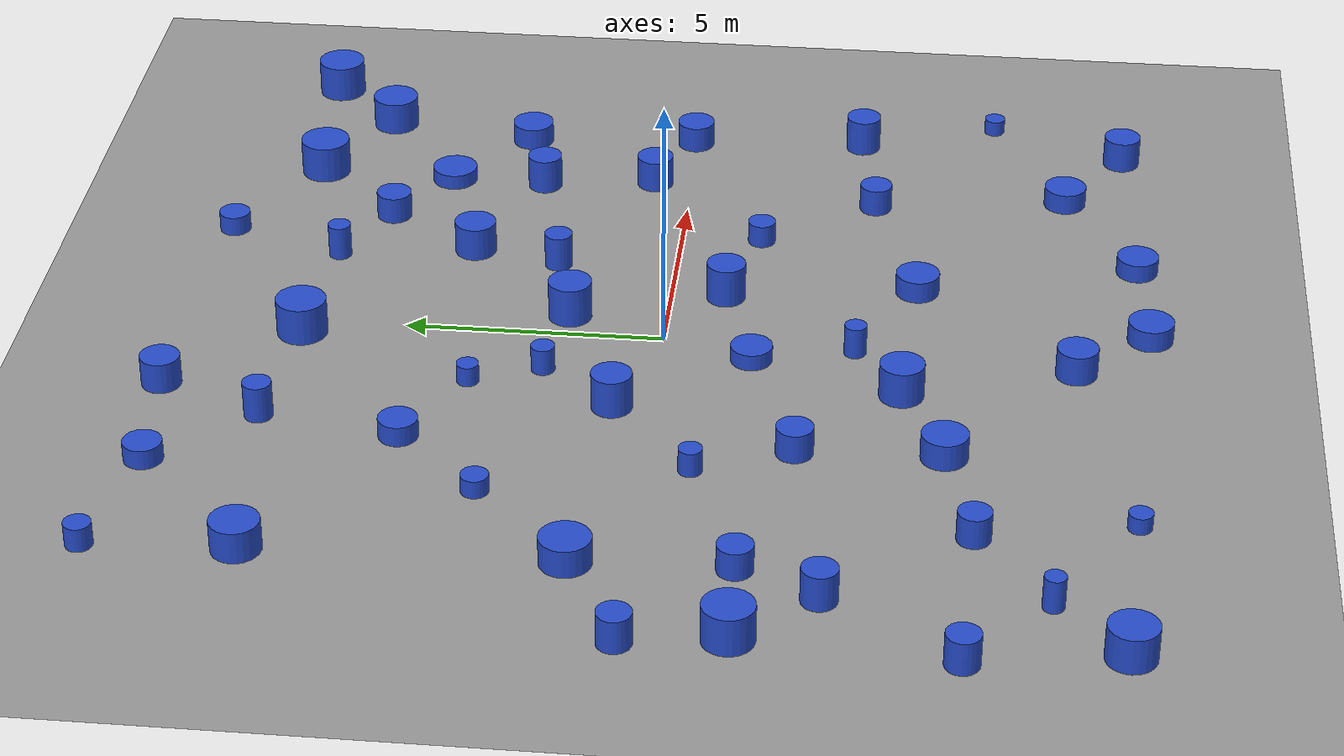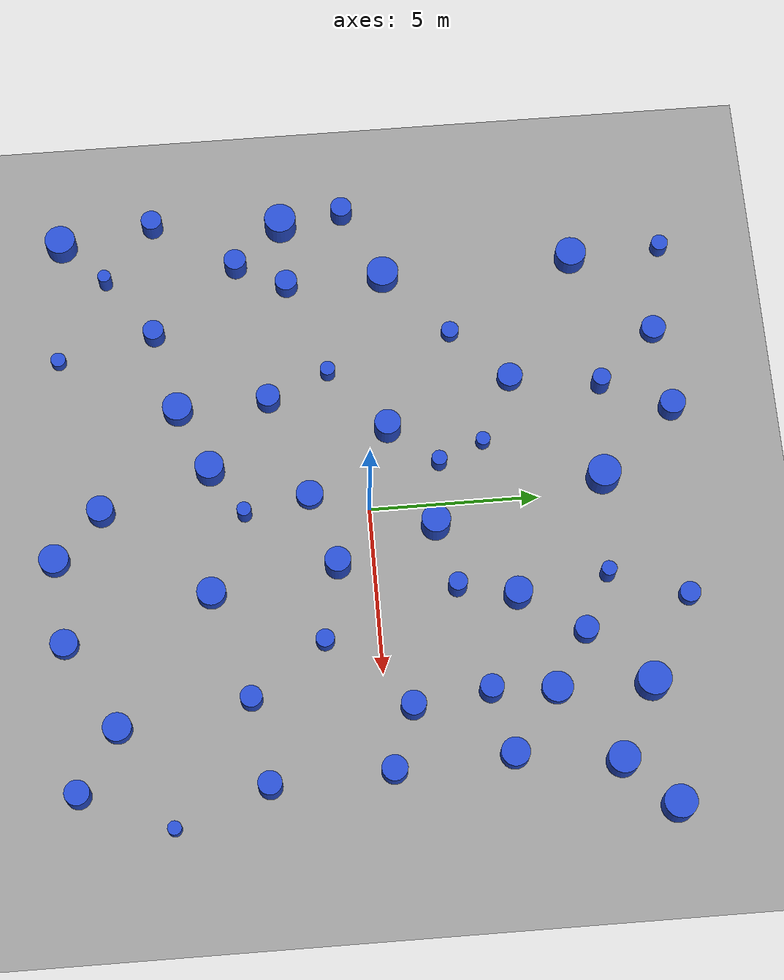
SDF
<sdf version="1.7">
 <world name="default">
  <plugin name="gazebo_ros_state" filename="libgazebo_ros_state.so">
   <ros>
    <namespace>/plug</namespace>
    <argument>model_states:=model_states_plug</argument>
    <argument>link_states:=link_states_plug</argument>
   </ros>
   <update_rate>50.0</update_rate>
  </plugin>
  <light name="sun" type="directional">
   <pose>0 0 10 0 -0 0</pose>
   <diffuse>0.8 0.8 0.8 1</diffuse>
   <specular>0.2 0.2 0.2 1</specular>
   <attenuation>
    <range>1000</range>
    <constant>0.9</constant>
    <linear>0.01</linear>
    <quadratic>0.001</quadratic>
   </attenuation>
   <direction>-0.5 0.1 -0.9</direction>
   <spot><inner_angle>0</inner_angle><outer_angle>0</outer_angle><falloff>0</falloff></spot>
  </light>
  <gravity>0 0 -9.8</gravity>
  <magnetic_field>6e-06 2.3e-05 -4.2e-05</magnetic_field>
  <atmosphere type="adiabatic"/>
  <physics type="ode">
   <max_step_size>0.002</max_step_size>
   <real_time_factor>1</real_time_factor>
   <real_time_update_rate>500</real_time_update_rate>
  </physics>
  <scene><ambient>0.4 0.4 0.4 1</ambient><background>0.7 0.7 0.7 1</background><shadows>1</shadows></scene>
  <audio><device>default</device></audio>
  <spherical_coordinates>
   <surface_model>EARTH_WGS84</surface_model>
   <latitude_deg>0</latitude_deg>
   <longitude_deg>0</longitude_deg>
   <elevation>0</elevation>
   <heading_deg>0</heading_deg>
  </spherical_coordinates>
  <model name="ground_plane_map">
   <static>1</static>
   <link name="link">
    <collision name="collision">
     <geometry><plane><normal>0 0 1</normal><size>30 30</size></plane></geometry>
     <surface>
      <contact><collide_without_contact>1</collide_without_contact></contact>
      <friction><ode><mu>100</mu><mu2>50</mu2></ode></friction>
     </surface>
    </collision>
    <visual name="visual">
     <cast_shadows>0</cast_shadows>
     <geometry><plane><normal>0 0 1</normal><size>30 30</size></plane></geometry>
     <material>
      <script><uri>file://media/materials/scripts/gazebo.material</uri><name>Gazebo/Grey</name></script>
     </material>
    </visual>
   </link>
  </model>
  <model name="0">
   <static>1</static>
   <link name="link">
    <inertial>
     <mass>2</mass>
     <inertia>
      <ixx>0.178261</ixx>
      <ixy>0</ixy>
      <ixz>0</ixz>
      <iyy>0.178261</iyy>
      <iyz>0</iyz>
      <izz>0.182659</izz>
     </inertia>
    </inertial>
    <collision name="collision">
     <geometry><cylinder><length>0.722211</length><radius>0.427386</radius></cylinder></geometry>
     <surface><contact><collide_without_contact>1</collide_without_contact></contact></surface>
    </collision>
    <visual name="visual">
     <geometry><cylinder><length>0.722211</length><radius>0.427386</radius></cylinder></geometry>
     <material>
      <script><uri>file://media/materials/scripts/gazebo.material</uri><name>Gazebo/Blue</name></script>
     </material>
    </visual>
    <gravity>0</gravity>
   </link>
   <pose>-1.52067 -4.61559 0.361105 0 -0 0</pose>
  </model>
  <model name="1">
   <static>1</static>
   <link name="link">
    <inertial>
     <mass>2</mass>
     <inertia><ixx>0.10313</ixx><ixy>0</ixy><ixz>0</ixz><iyy>0.10313</iyy><iyz>0</iyz><izz>0.10335</izz></inertia>
    </inertial>
    <collision name="collision">
     <geometry><cylinder><length>0.555637</length><radius>0.32148</radius></cylinder></geometry>
     <surface><contact><collide_without_contact>1</collide_without_contact></contact></surface>
    </collision>
    <visual name="visual">
     <geometry><cylinder><length>0.555637</length><radius>0.32148</radius></cylinder></geometry>
     <material>
      <script><uri>file://media/materials/scripts/gazebo.material</uri><name>Gazebo/Blue</name></script>
     </material>
    </visual>
    <gravity>0</gravity>
   </link>
   <pose>5.4935 -3.80728 0.277819 0 -0 0</pose>
  </model>
  <model name="2">
   <static>1</static>
   <link name="link">
    <inertial>
     <mass>2</mass>
     <inertia>
      <ixx>0.118612</ixx>
      <ixy>0</ixy>
      <ixz>0</ixz>
      <iyy>0.118612</iyy>
      <iyz>0</iyz>
      <izz>0.140636</izz>
     </inertia>
    </inertial>
    <collision name="collision">
     <geometry><cylinder><length>0.538298</length><radius>0.375015</radius></cylinder></geometry>
     <surface><contact><collide_without_contact>1</collide_without_contact></contact></surface>
    </collision>
    <visual name="visual">
     <geometry><cylinder><length>0.538298</length><radius>0.375015</radius></cylinder></geometry>
     <material>
      <script><uri>file://media/materials/scripts/gazebo.material</uri><name>Gazebo/Blue</name></script>
     </material>
    </visual>
    <gravity>0</gravity>
   </link>
   <pose>7.85616 0.090222 0.269149 0 -0 0</pose>
  </model>
  <model name="3">
   <static>1</static>
   <link name="link">
    <inertial>
     <mass>2</mass>
     <inertia>
      <ixx>0.123456</ixx>
      <ixy>0</ixy>
      <ixz>0</ixz>
      <iyy>0.123456</iyy>
      <iyz>0</iyz>
      <izz>0.182108</izz>
     </inertia>
    </inertial>
    <collision name="collision">
     <geometry><cylinder><length>0.440919</length><radius>0.426741</radius></cylinder></geometry>
     <surface><contact><collide_without_contact>1</collide_without_contact></contact></surface>
    </collision>
    <visual name="visual">
     <geometry><cylinder><length>0.440919</length><radius>0.426741</radius></cylinder></geometry>
     <material>
      <script><uri>file://media/materials/scripts/gazebo.material</uri><name>Gazebo/Blue</name></script>
     </material>
    </visual>
    <gravity>0</gravity>
   </link>
   <pose>2.26635 -4.77693 0.220459 0 -0 0</pose>
  </model>
  <model name="4">
   <static>1</static>
   <link name="link">
    <inertial>
     <mass>2</mass>
     <inertia>
      <ixx>0.217403</ixx>
      <ixy>0</ixy>
      <ixz>0</ixz>
      <iyy>0.217403</iyy>
      <iyz>0</iyz>
      <izz>0.244862</izz>
     </inertia>
    </inertial>
    <collision name="collision">
     <geometry><cylinder><length>0.754873</length><radius>0.494836</radius></cylinder></geometry>
     <surface><contact><collide_without_contact>1</collide_without_contact></contact></surface>
    </collision>
    <visual name="visual">
     <geometry><cylinder><length>0.754873</length><radius>0.494836</radius></cylinder></geometry>
     <material>
      <script><uri>file://media/materials/scripts/gazebo.material</uri><name>Gazebo/Blue</name></script>
     </material>
    </visual>
    <gravity>0</gravity>
   </link>
   <pose>5.89733 7.64531 0.377437 0 -0 0</pose>
  </model>
  <model name="5">
   <static>1</static>
   <link name="link">
    <inertial>
     <mass>2</mass>
     <inertia>
      <ixx>0.122275</ixx>
      <ixy>0</ixy>
      <ixz>0</ixz>
      <iyy>0.122275</iyy>
      <iyz>0</iyz>
      <izz>0.175519</izz>
     </inertia>
    </inertial>
    <collision name="collision">
     <geometry><cylinder><length>0.455074</length><radius>0.41895</radius></cylinder></geometry>
     <surface><contact><collide_without_contact>1</collide_without_contact></contact></surface>
    </collision>
    <visual name="visual">
     <geometry><cylinder><length>0.455074</length><radius>0.41895</radius></cylinder></geometry>
     <material>
      <script><uri>file://media/materials/scripts/gazebo.material</uri><name>Gazebo/Blue</name></script>
     </material>
    </visual>
    <gravity>0</gravity>
   </link>
   <pose>7.64258 3.52552 0.227537 0 -0 0</pose>
  </model>
  <model name="6">
   <static>1</static>
   <link name="link">
    <inertial>
     <mass>2</mass>
     <inertia>
      <ixx>0.0743938</ixx>
      <ixy>0</ixy>
      <ixz>0</ixz>
      <iyy>0.0743938</iyy>
      <iyz>0</iyz>
      <izz>0.0529968</izz>
     </inertia>
    </inertial>
    <collision name="collision">
     <geometry><cylinder><length>0.536071</length><radius>0.23021</radius></cylinder></geometry>
     <surface><contact><collide_without_contact>1</collide_without_contact></contact></surface>
    </collision>
    <visual name="visual">
     <geometry><cylinder><length>0.536071</length><radius>0.23021</radius></cylinder></geometry>
     <material>
      <script><uri>file://media/materials/scripts/gazebo.material</uri><name>Gazebo/Blue</name></script>
     </material>
    </visual>
    <gravity>0</gravity>
   </link>
   <pose>-1.28625 2.16669 0.268036 0 -0 0</pose>
  </model>
  <model name="7">
   <static>1</static>
   <link name="link">
    <inertial>
     <mass>2</mass>
     <inertia>
      <ixx>0.215425</ixx>
      <ixy>0</ixy>
      <ixz>0</ixz>
      <iyy>0.215425</iyy>
      <iyz>0</iyz>
      <izz>0.240082</izz>
     </inertia>
    </inertial>
    <collision name="collision">
     <geometry><cylinder><length>0.756506</length><radius>0.489982</radius></cylinder></geometry>
     <surface><contact><collide_without_contact>1</collide_without_contact></contact></surface>
    </collision>
    <visual name="visual">
     <geometry><cylinder><length>0.756506</length><radius>0.489982</radius></cylinder></geometry>
     <material>
      <script><uri>file://media/materials/scripts/gazebo.material</uri><name>Gazebo/Blue</name></script>
     </material>
    </visual>
    <gravity>0</gravity>
   </link>
   <pose>-0.437275 6.94821 0.378253 0 -0 0</pose>
  </model>
  <model name="8">
   <static>1</static>
   <link name="link">
    <inertial>
     <mass>2</mass>
     <inertia>
      <ixx>0.128317</ixx>
      <ixy>0</ixy>
      <ixz>0</ixz>
      <iyy>0.128317</iyy>
      <iyz>0</iyz>
      <izz>0.19493</izz>
     </inertia>
    </inertial>
    <collision name="collision">
     <geometry><cylinder><length>0.430246</length><radius>0.441508</radius></cylinder></geometry>
     <surface><contact><collide_without_contact>1</collide_without_contact></contact></surface>
    </collision>
    <visual name="visual">
     <geometry><cylinder><length>0.430246</length><radius>0.441508</radius></cylinder></geometry>
     <material>
      <script><uri>file://media/materials/scripts/gazebo.material</uri><name>Gazebo/Blue</name></script>
     </material>
    </visual>
    <gravity>0</gravity>
   </link>
   <pose>0.930984 -9.29006 0.215123 0 -0 0</pose>
  </model>
  <model name="9">
   <static>1</static>
   <link name="link">
    <inertial>
     <mass>2</mass>
     <inertia>
      <ixx>0.123655</ixx>
      <ixy>0</ixy>
      <ixz>0</ixz>
      <iyy>0.123655</iyy>
      <iyz>0</iyz>
      <izz>0.102174</izz>
     </inertia>
    </inertial>
    <collision name="collision">
     <geometry><cylinder><length>0.659852</length><radius>0.319647</radius></cylinder></geometry>
     <surface><contact><collide_without_contact>1</collide_without_contact></contact></surface>
    </collision>
    <visual name="visual">
     <geometry><cylinder><length>0.659852</length><radius>0.319647</radius></cylinder></geometry>
     <material>
      <script><uri>file://media/materials/scripts/gazebo.material</uri><name>Gazebo/Blue</name></script>
     </material>
    </visual>
    <gravity>0</gravity>
   </link>
   <pose>-9.65823 -0.124337 0.329926 0 -0 0</pose>
  </model>
  <model name="10">
   <static>1</static>
   <link name="link">
    <inertial>
     <mass>2</mass>
     <inertia>
      <ixx>0.127056</ixx>
      <ixy>0</ixy>
      <ixz>0</ixz>
      <iyy>0.127056</iyy>
      <iyz>0</iyz>
      <izz>0.0746236</izz>
     </inertia>
    </inertial>
    <collision name="collision">
     <geometry><cylinder><length>0.733801</length><radius>0.273173</radius></cylinder></geometry>
     <surface><contact><collide_without_contact>1</collide_without_contact></contact></surface>
    </collision>
    <visual name="visual">
     <geometry><cylinder><length>0.733801</length><radius>0.273173</radius></cylinder></geometry>
     <material>
      <script><uri>file://media/materials/scripts/gazebo.material</uri><name>Gazebo/Blue</name></script>
     </material>
    </visual>
    <gravity>0</gravity>
   </link>
   <pose>-3.40041 7.20702 0.366901 0 -0 0</pose>
  </model>
  <model name="11">
   <static>1</static>
   <link name="link">
    <inertial>
     <mass>2</mass>
     <inertia>
      <ixx>0.0946182</ixx>
      <ixy>0</ixy>
      <ixz>0</ixz>
      <iyy>0.0946182</iyy>
      <iyz>0</iyz>
      <izz>0.137087</izz>
     </inertia>
    </inertial>
    <collision name="collision">
     <geometry><cylinder><length>0.395534</length><radius>0.370253</radius></cylinder></geometry>
     <surface><contact><collide_without_contact>1</collide_without_contact></contact></surface>
    </collision>
    <visual name="visual">
     <geometry><cylinder><length>0.395534</length><radius>0.370253</radius></cylinder></geometry>
     <material>
      <script><uri>file://media/materials/scripts/gazebo.material</uri><name>Gazebo/Blue</name></script>
     </material>
    </visual>
    <gravity>0</gravity>
   </link>
   <pose>-5.03413 9.00459 0.197767 0 -0 0</pose>
  </model>
  <model name="12">
   <static>1</static>
   <link name="link">
    <inertial>
     <mass>2</mass>
     <inertia>
      <ixx>0.137947</ixx>
      <ixy>0</ixy>
      <ixz>0</ixz>
      <iyy>0.137947</iyy>
      <iyz>0</iyz>
      <izz>0.111817</izz>
     </inertia>
    </inertial>
    <collision name="collision">
     <geometry><cylinder><length>0.70159</length><radius>0.334391</radius></cylinder></geometry>
     <surface><contact><collide_without_contact>1</collide_without_contact></contact></surface>
    </collision>
    <visual name="visual">
     <geometry><cylinder><length>0.70159</length><radius>0.334391</radius></cylinder></geometry>
     <material>
      <script><uri>file://media/materials/scripts/gazebo.material</uri><name>Gazebo/Blue</name></script>
     </material>
    </visual>
    <gravity>0</gravity>
   </link>
   <pose>-8.11049 -3.47856 0.350795 0 -0 0</pose>
  </model>
  <model name="13">
   <static>1</static>
   <link name="link">
    <inertial>
     <mass>2</mass>
     <inertia>
      <ixx>0.166275</ixx>
      <ixy>0</ixy>
      <ixz>0</ixz>
      <iyy>0.166275</iyy>
      <iyz>0</iyz>
      <izz>0.230256</izz>
     </inertia>
    </inertial>
    <collision name="collision">
     <geometry><cylinder><length>0.55397</length><radius>0.47985</radius></cylinder></geometry>
     <surface><contact><collide_without_contact>1</collide_without_contact></contact></surface>
    </collision>
    <visual name="visual">
     <geometry><cylinder><length>0.55397</length><radius>0.47985</radius></cylinder></geometry>
     <material>
      <script><uri>file://media/materials/scripts/gazebo.material</uri><name>Gazebo/Blue</name></script>
     </material>
    </visual>
    <gravity>0</gravity>
   </link>
   <pose>-7.44366 0.976144 0.276985 0 -0 0</pose>
  </model>
  <model name="14">
   <static>1</static>
   <link name="link">
    <inertial>
     <mass>2</mass>
     <inertia>
      <ixx>0.137462</ixx>
      <ixy>0</ixy>
      <ixz>0</ixz>
      <iyy>0.137462</iyy>
      <iyz>0</iyz>
      <izz>0.132665</izz>
     </inertia>
    </inertial>
    <collision name="collision">
     <geometry><cylinder><length>0.653281</length><radius>0.364232</radius></cylinder></geometry>
     <surface><contact><collide_without_contact>1</collide_without_contact></contact></surface>
    </collision>
    <visual name="visual">
     <geometry><cylinder><length>0.653281</length><radius>0.364232</radius></cylinder></geometry>
     <material>
      <script><uri>file://media/materials/scripts/gazebo.material</uri><name>Gazebo/Blue</name></script>
     </material>
    </visual>
    <gravity>0</gravity>
   </link>
   <pose>6.06026 0.776327 0.32664 0 -0 0</pose>
  </model>
  <model name="15">
   <static>1</static>
   <link name="link">
    <inertial>
     <mass>2</mass>
     <inertia>
      <ixx>0.174463</ixx>
      <ixy>0</ixy>
      <ixz>0</ixz>
      <iyy>0.174463</iyy>
      <iyz>0</iyz>
      <izz>0.145127</izz>
     </inertia>
    </inertial>
    <collision name="collision">
     <geometry><cylinder><length>0.781919</length><radius>0.380956</radius></cylinder></geometry>
     <surface><contact><collide_without_contact>1</collide_without_contact></contact></surface>
    </collision>
    <visual name="visual">
     <geometry><cylinder><length>0.781919</length><radius>0.380956</radius></cylinder></geometry>
     <material>
      <script><uri>file://media/materials/scripts/gazebo.material</uri><name>Gazebo/Blue</name></script>
     </material>
    </visual>
    <gravity>0</gravity>
   </link>
   <pose>1.68559 -1.05831 0.39096 0 -0 0</pose>
  </model>
  <model name="16">
   <static>1</static>
   <link name="link">
    <inertial>
     <mass>2</mass>
     <inertia>
      <ixx>0.10939</ixx>
      <ixy>0</ixy>
      <ixz>0</ixz>
      <iyy>0.10939</iyy>
      <iyz>0</iyz>
      <izz>0.0995215</izz>
     </inertia>
    </inertial>
    <collision name="collision">
     <geometry><cylinder><length>0.598143</length><radius>0.31547</radius></cylinder></geometry>
     <surface><contact><collide_without_contact>1</collide_without_contact></contact></surface>
    </collision>
    <visual name="visual">
     <geometry><cylinder><length>0.598143</length><radius>0.31547</radius></cylinder></geometry>
     <material>
      <script><uri>file://media/materials/scripts/gazebo.material</uri><name>Gazebo/Blue</name></script>
     </material>
    </visual>
    <gravity>0</gravity>
   </link>
   <pose>-6.0162 -6.06775 0.299072 0 -0 0</pose>
  </model>
  <model name="17">
   <static>1</static>
   <link name="link">
    <inertial>
     <mass>2</mass>
     <inertia>
      <ixx>0.140088</ixx>
      <ixy>0</ixy>
      <ixz>0</ixz>
      <iyy>0.140088</iyy>
      <iyz>0</iyz>
      <izz>0.157607</izz>
     </inertia>
    </inertial>
    <collision name="collision">
     <geometry><cylinder><length>0.606387</length><radius>0.396998</radius></cylinder></geometry>
     <surface><contact><collide_without_contact>1</collide_without_contact></contact></surface>
    </collision>
    <visual name="visual">
     <geometry><cylinder><length>0.606387</length><radius>0.396998</radius></cylinder></geometry>
     <material>
      <script><uri>file://media/materials/scripts/gazebo.material</uri><name>Gazebo/Blue</name></script>
     </material>
    </visual>
    <gravity>0</gravity>
   </link>
   <pose>-0.450746 -7.87784 0.303193 0 -0 0</pose>
  </model>
  <model name="18">
   <static>1</static>
   <link name="link">
    <inertial>
     <mass>2</mass>
     <inertia>
      <ixx>0.183994</ixx>
      <ixy>0</ixy>
      <ixz>0</ixz>
      <iyy>0.183994</iyy>
      <iyz>0</iyz>
      <izz>0.214398</izz>
     </inertia>
    </inertial>
    <collision name="collision">
     <geometry><cylinder><length>0.678802</length><radius>0.463031</radius></cylinder></geometry>
     <surface><contact><collide_without_contact>1</collide_without_contact></contact></surface>
    </collision>
    <visual name="visual">
     <geometry><cylinder><length>0.678802</length><radius>0.463031</radius></cylinder></geometry>
     <material>
      <script><uri>file://media/materials/scripts/gazebo.material</uri><name>Gazebo/Blue</name></script>
     </material>
    </visual>
    <gravity>0</gravity>
   </link>
   <pose>8.07554 6.53207 0.339401 0 -0 0</pose>
  </model>
  <model name="19">
   <static>1</static>
   <link name="link">
    <inertial>
     <mass>2</mass>
     <inertia><ixx>0.20725</ixx><ixy>0</ixy><ixz>0</ixz><iyy>0.20725</iyy><iyz>0</iyz><izz>0.227457</izz></inertia>
    </inertial>
    <collision name="collision">
     <geometry><cylinder><length>0.749087</length><radius>0.476925</radius></cylinder></geometry>
     <surface><contact><collide_without_contact>1</collide_without_contact></contact></surface>
    </collision>
    <visual name="visual">
     <geometry><cylinder><length>0.749087</length><radius>0.476925</radius></cylinder></geometry>
     <material>
      <script><uri>file://media/materials/scripts/gazebo.material</uri><name>Gazebo/Blue</name></script>
     </material>
    </visual>
    <gravity>0</gravity>
   </link>
   <pose>9.4518 7.94113 0.374543 0 -0 0</pose>
  </model>
  <model name="20">
   <static>1</static>
   <link name="link">
    <inertial>
     <mass>2</mass>
     <inertia>
      <ixx>0.106138</ixx>
      <ixy>0</ixy>
      <ixz>0</ixz>
      <iyy>0.106138</iyy>
      <iyz>0</iyz>
      <izz>0.0504954</izz>
     </inertia>
    </inertial>
    <collision name="collision">
     <geometry><cylinder><length>0.696663</length><radius>0.224712</radius></cylinder></geometry>
     <surface><contact><collide_without_contact>1</collide_without_contact></contact></surface>
    </collision>
    <visual name="visual">
     <geometry><cylinder><length>0.696663</length><radius>0.224712</radius></cylinder></geometry>
     <material>
      <script><uri>file://media/materials/scripts/gazebo.material</uri><name>Gazebo/Blue</name></script>
     </material>
    </visual>
    <gravity>0</gravity>
   </link>
   <pose>2.54446 6.74646 0.348331 0 -0 0</pose>
  </model>
  <model name="21">
   <static>1</static>
   <link name="link">
    <inertial>
     <mass>2</mass>
     <inertia>
      <ixx>0.117581</ixx>
      <ixy>0</ixy>
      <ixz>0</ixz>
      <iyy>0.117581</iyy>
      <iyz>0</iyz>
      <izz>0.175936</izz>
     </inertia>
    </inertial>
    <collision name="collision">
     <geometry><cylinder><length>0.421518</length><radius>0.419447</radius></cylinder></geometry>
     <surface><contact><collide_without_contact>1</collide_without_contact></contact></surface>
    </collision>
    <visual name="visual">
     <geometry><cylinder><length>0.421518</length><radius>0.419447</radius></cylinder></geometry>
     <material>
      <script><uri>file://media/materials/scripts/gazebo.material</uri><name>Gazebo/Blue</name></script>
     </material>
    </visual>
    <gravity>0</gravity>
   </link>
   <pose>6.05324 -7.6528 0.210759 0 -0 0</pose>
  </model>
  <model name="22">
   <static>1</static>
   <link name="link">
    <inertial>
     <mass>2</mass>
     <inertia>
      <ixx>0.106974</ixx>
      <ixy>0</ixy>
      <ixz>0</ixz>
      <iyy>0.106974</iyy>
      <iyz>0</iyz>
      <izz>0.167527</izz>
     </inertia>
    </inertial>
    <collision name="collision">
     <geometry><cylinder><length>0.373179</length><radius>0.409301</radius></cylinder></geometry>
     <surface><contact><collide_without_contact>1</collide_without_contact></contact></surface>
    </collision>
    <visual name="visual">
     <geometry><cylinder><length>0.373179</length><radius>0.409301</radius></cylinder></geometry>
     <material>
      <script><uri>file://media/materials/scripts/gazebo.material</uri><name>Gazebo/Blue</name></script>
     </material>
    </visual>
    <gravity>0</gravity>
   </link>
   <pose>3.46395 -9.07862 0.18659 0 -0 0</pose>
  </model>
  <model name="23">
   <static>1</static>
   <link name="link">
    <inertial>
     <mass>2</mass>
     <inertia>
      <ixx>0.136475</ixx>
      <ixy>0</ixy>
      <ixz>0</ixz>
      <iyy>0.136475</iyy>
      <iyz>0</iyz>
      <izz>0.145849</izz>
     </inertia>
    </inertial>
    <collision name="collision">
     <geometry><cylinder><length>0.6175</length><radius>0.381902</radius></cylinder></geometry>
     <surface><contact><collide_without_contact>1</collide_without_contact></contact></surface>
    </collision>
    <visual name="visual">
     <geometry><cylinder><length>0.6175</length><radius>0.381902</radius></cylinder></geometry>
     <material>
      <script><uri>file://media/materials/scripts/gazebo.material</uri><name>Gazebo/Blue</name></script>
     </material>
    </visual>
    <gravity>0</gravity>
   </link>
   <pose>-2.49801 9.24331 0.30875 0 -0 0</pose>
  </model>
  <model name="24">
   <static>1</static>
   <link name="link">
    <inertial>
     <mass>2</mass>
     <inertia>
      <ixx>0.038194</ixx>
      <ixy>0</ixy>
      <ixz>0</ixz>
      <iyy>0.038194</iyy>
      <iyz>0</iyz>
      <izz>0.0426385</izz>
     </inertia>
    </inertial>
    <collision name="collision">
     <geometry><cylinder><length>0.318196</length><radius>0.206491</radius></cylinder></geometry>
     <surface><contact><collide_without_contact>1</collide_without_contact></contact></surface>
    </collision>
    <visual name="visual">
     <geometry><cylinder><length>0.318196</length><radius>0.206491</radius></cylinder></geometry>
     <material>
      <script><uri>file://media/materials/scripts/gazebo.material</uri><name>Gazebo/Blue</name></script>
     </material>
    </visual>
    <gravity>0</gravity>
   </link>
   <pose>9.03023 -6.17046 0.159098 0 -0 0</pose>
  </model>
  <model name="25">
   <static>1</static>
   <link name="link">
    <inertial>
     <mass>2</mass>
     <inertia>
      <ixx>0.0564643</ixx>
      <ixy>0</ixy>
      <ixz>0</ixz>
      <iyy>0.0564643</iyy>
      <iyz>0</iyz>
      <izz>0.06926</izz>
     </inertia>
    </inertial>
    <collision name="collision">
     <geometry><cylinder><length>0.361948</length><radius>0.263173</radius></cylinder></geometry>
     <surface><contact><collide_without_contact>1</collide_without_contact></contact></surface>
    </collision>
    <visual name="visual">
     <geometry><cylinder><length>0.361948</length><radius>0.263173</radius></cylinder></geometry>
     <material>
      <script><uri>file://media/materials/scripts/gazebo.material</uri><name>Gazebo/Blue</name></script>
     </material>
    </visual>
    <gravity>0</gravity>
   </link>
   <pose>-5.43647 2.86118 0.180974 0 -0 0</pose>
  </model>
  <model name="26">
   <static>1</static>
   <link name="link">
    <inertial>
     <mass>2</mass>
     <inertia>
      <ixx>0.0699097</ixx>
      <ixy>0</ixy>
      <ixz>0</ixz>
      <iyy>0.0699097</iyy>
      <iyz>0</iyz>
      <izz>0.0645645</izz>
     </inertia>
    </inertial>
    <collision name="collision">
     <geometry><cylinder><length>0.475147</length><radius>0.254095</radius></cylinder></geometry>
     <surface><contact><collide_without_contact>1</collide_without_contact></contact></surface>
    </collision>
    <visual name="visual">
     <geometry><cylinder><length>0.475147</length><radius>0.254095</radius></cylinder></geometry>
     <material>
      <script><uri>file://media/materials/scripts/gazebo.material</uri><name>Gazebo/Blue</name></script>
     </material>
    </visual>
    <gravity>0</gravity>
   </link>
   <pose>-7.77877 9.51659 0.237573 0 -0 0</pose>
  </model>
  <model name="27">
   <static>1</static>
   <link name="link">
    <inertial>
     <mass>2</mass>
     <inertia>
      <ixx>0.0739223</ixx>
      <ixy>0</ixy>
      <ixz>0</ixz>
      <iyy>0.0739223</iyy>
      <iyz>0</iyz>
      <izz>0.0945972</izz>
     </inertia>
    </inertial>
    <collision name="collision">
     <geometry><cylinder><length>0.399678</length><radius>0.307567</radius></cylinder></geometry>
     <surface><contact><collide_without_contact>1</collide_without_contact></contact></surface>
    </collision>
    <visual name="visual">
     <geometry><cylinder><length>0.399678</length><radius>0.307567</radius></cylinder></geometry>
     <material>
      <script><uri>file://media/materials/scripts/gazebo.material</uri><name>Gazebo/Blue</name></script>
     </material>
    </visual>
    <gravity>0</gravity>
   </link>
   <pose>3.34661 9.04399 0.199839 0 -0 0</pose>
  </model>
  <model name="28">
   <static>1</static>
   <link name="link">
    <inertial>
     <mass>2</mass>
     <inertia>
      <ixx>0.0991913</ixx>
      <ixy>0</ixy>
      <ixz>0</ixz>
      <iyy>0.0991913</iyy>
      <iyz>0</iyz>
      <izz>0.162297</izz>
     </inertia>
    </inertial>
    <collision name="collision">
     <geometry><cylinder><length>0.329025</length><radius>0.402861</radius></cylinder></geometry>
     <surface><contact><collide_without_contact>1</collide_without_contact></contact></surface>
    </collision>
    <visual name="visual">
     <geometry><cylinder><length>0.329025</length><radius>0.402861</radius></cylinder></geometry>
     <material>
      <script><uri>file://media/materials/scripts/gazebo.material</uri><name>Gazebo/Blue</name></script>
     </material>
    </visual>
    <gravity>0</gravity>
   </link>
   <pose>-0.54463 -1.7293 0.164513 0 -0 0</pose>
  </model>
  <model name="29">
   <static>1</static>
   <link name="link">
    <inertial>
     <mass>2</mass>
     <inertia>
      <ixx>0.119107</ixx>
      <ixy>0</ixy>
      <ixz>0</ixz>
      <iyy>0.119107</iyy>
      <iyz>0</iyz>
      <izz>0.124313</izz>
     </inertia>
    </inertial>
    <collision name="collision">
     <geometry><cylinder><length>0.584556</length><radius>0.35258</radius></cylinder></geometry>
     <surface><contact><collide_without_contact>1</collide_without_contact></contact></surface>
    </collision>
    <visual name="visual">
     <geometry><cylinder><length>0.584556</length><radius>0.35258</radius></cylinder></geometry>
     <material>
      <script><uri>file://media/materials/scripts/gazebo.material</uri><name>Gazebo/Blue</name></script>
     </material>
    </visual>
    <gravity>0</gravity>
   </link>
   <pose>-3.63812 -2.75624 0.292278 0 -0 0</pose>
  </model>
  <model name="30">
   <static>1</static>
   <link name="link">
    <inertial>
     <mass>2</mass>
     <inertia>
      <ixx>0.124009</ixx>
      <ixy>0</ixy>
      <ixz>0</ixz>
      <iyy>0.124009</iyy>
      <iyz>0</iyz>
      <izz>0.075779</izz>
     </inertia>
    </inertial>
    <collision name="collision">
     <geometry><cylinder><length>0.718831</length><radius>0.27528</radius></cylinder></geometry>
     <surface><contact><collide_without_contact>1</collide_without_contact></contact></surface>
    </collision>
    <visual name="visual">
     <geometry><cylinder><length>0.718831</length><radius>0.27528</radius></cylinder></geometry>
     <material>
      <script><uri>file://media/materials/scripts/gazebo.material</uri><name>Gazebo/Blue</name></script>
     </material>
    </visual>
    <gravity>0</gravity>
   </link>
   <pose>2.60132 2.35488 0.359415 0 -0 0</pose>
  </model>
  <model name="31">
   <static>1</static>
   <link name="link">
    <inertial>
     <mass>2</mass>
     <inertia>
      <ixx>0.122175</ixx>
      <ixy>0</ixy>
      <ixz>0</ixz>
      <iyy>0.122175</iyy>
      <iyz>0</iyz>
      <izz>0.100112</izz>
     </inertia>
    </inertial>
    <collision name="collision">
     <geometry><cylinder><length>0.65781</length><radius>0.316405</radius></cylinder></geometry>
     <surface><contact><collide_without_contact>1</collide_without_contact></contact></surface>
    </collision>
    <visual name="visual">
     <geometry><cylinder><length>0.65781</length><radius>0.316405</radius></cylinder></geometry>
     <material>
      <script><uri>file://media/materials/scripts/gazebo.material</uri><name>Gazebo/Blue</name></script>
     </material>
    </visual>
    <gravity>0</gravity>
   </link>
   <pose>-9.65408 -5.9591 0.328905 0 -0 0</pose>
  </model>
  <model name="32">
   <static>1</static>
   <link name="link">
    <inertial>
     <mass>2</mass>
     <inertia>
      <ixx>0.0733238</ixx>
      <ixy>0</ixy>
      <ixz>0</ixz>
      <iyy>0.0733238</iyy>
      <iyz>0</iyz>
      <izz>0.0738887</izz>
     </inertia>
    </inertial>
    <collision name="collision">
     <geometry><cylinder><length>0.467201</length><radius>0.271825</radius></cylinder></geometry>
     <surface><contact><collide_without_contact>1</collide_without_contact></contact></surface>
    </collision>
    <visual name="visual">
     <geometry><cylinder><length>0.467201</length><radius>0.271825</radius></cylinder></geometry>
     <material>
      <script><uri>file://media/materials/scripts/gazebo.material</uri><name>Gazebo/Blue</name></script>
     </material>
    </visual>
    <gravity>0</gravity>
   </link>
   <pose>3.92687 -1.59101 0.2336 0 -0 0</pose>
  </model>
  <model name="33">
   <static>1</static>
   <link name="link">
    <inertial>
     <mass>2</mass>
     <inertia>
      <ixx>0.089286</ixx>
      <ixy>0</ixy>
      <ixz>0</ixz>
      <iyy>0.089286</iyy>
      <iyz>0</iyz>
      <izz>0.0458105</izz>
     </inertia>
    </inertial>
    <collision name="collision">
     <geometry><cylinder><length>0.631098</length><radius>0.214034</radius></cylinder></geometry>
     <surface><contact><collide_without_contact>1</collide_without_contact></contact></surface>
    </collision>
    <visual name="visual">
     <geometry><cylinder><length>0.631098</length><radius>0.214034</radius></cylinder></geometry>
     <material>
      <script><uri>file://media/materials/scripts/gazebo.material</uri><name>Gazebo/Blue</name></script>
     </material>
    </visual>
    <gravity>0</gravity>
   </link>
   <pose>-0.106028 -3.67838 0.315549 0 -0 0</pose>
  </model>
  <model name="34">
   <static>1</static>
   <link name="link">
    <inertial>
     <mass>2</mass>
     <inertia>
      <ixx>0.145425</ixx>
      <ixy>0</ixy>
      <ixz>0</ixz>
      <iyy>0.145425</iyy>
      <iyz>0</iyz>
      <izz>0.195995</izz>
     </inertia>
    </inertial>
    <collision name="collision">
     <geometry><cylinder><length>0.533446</length><radius>0.442714</radius></cylinder></geometry>
     <surface><contact><collide_without_contact>1</collide_without_contact></contact></surface>
    </collision>
    <visual name="visual">
     <geometry><cylinder><length>0.533446</length><radius>0.442714</radius></cylinder></geometry>
     <material>
      <script><uri>file://media/materials/scripts/gazebo.material</uri><name>Gazebo/Blue</name></script>
     </material>
    </visual>
    <gravity>0</gravity>
   </link>
   <pose>-3.51369 -5.47585 0.266723 0 -0 0</pose>
  </model>
  <model name="35">
   <static>1</static>
   <link name="link">
    <inertial>
     <mass>2</mass>
     <inertia>
      <ixx>0.0924477</ixx>
      <ixy>0</ixy>
      <ixz>0</ixz>
      <iyy>0.0924477</iyy>
      <iyz>0</iyz>
      <izz>0.0402834</izz>
     </inertia>
    </inertial>
    <collision name="collision">
     <geometry><cylinder><length>0.658662</length><radius>0.200707</radius></cylinder></geometry>
     <surface><contact><collide_without_contact>1</collide_without_contact></contact></surface>
    </collision>
    <visual name="visual">
     <geometry><cylinder><length>0.658662</length><radius>0.200707</radius></cylinder></geometry>
     <material>
      <script><uri>file://media/materials/scripts/gazebo.material</uri><name>Gazebo/Blue</name></script>
     </material>
    </visual>
    <gravity>0</gravity>
   </link>
   <pose>-7.88286 -7.46894 0.329331 0 -0 0</pose>
  </model>
  <model name="36">
   <static>1</static>
   <link name="link">
    <inertial>
     <mass>2</mass>
     <inertia>
      <ixx>0.171794</ixx>
      <ixy>0</ixy>
      <ixz>0</ixz>
      <iyy>0.171794</iyy>
      <iyz>0</iyz>
      <izz>0.213533</izz>
     </inertia>
    </inertial>
    <collision name="collision">
     <geometry><cylinder><length>0.624633</length><radius>0.462096</radius></cylinder></geometry>
     <surface><contact><collide_without_contact>1</collide_without_contact></contact></surface>
    </collision>
    <visual name="visual">
     <geometry><cylinder><length>0.624633</length><radius>0.462096</radius></cylinder></geometry>
     <material>
      <script><uri>file://media/materials/scripts/gazebo.material</uri><name>Gazebo/Blue</name></script>
     </material>
    </visual>
    <gravity>0</gravity>
   </link>
   <pose>-7.62688 6.75166 0.312316 0 -0 0</pose>
  </model>
  <model name="37">
   <static>1</static>
   <link name="link">
    <inertial>
     <mass>2</mass>
     <inertia>
      <ixx>0.0665703</ixx>
      <ixy>0</ixy>
      <ixz>0</ixz>
      <iyy>0.0665703</iyy>
      <iyz>0</iyz>
      <izz>0.050357</izz>
     </inertia>
    </inertial>
    <collision name="collision">
     <geometry><cylinder><length>0.498348</length><radius>0.224404</radius></cylinder></geometry>
     <surface><contact><collide_without_contact>1</collide_without_contact></contact></surface>
    </collision>
    <visual name="visual">
     <geometry><cylinder><length>0.498348</length><radius>0.224404</radius></cylinder></geometry>
     <material>
      <script><uri>file://media/materials/scripts/gazebo.material</uri><name>Gazebo/Blue</name></script>
     </material>
    </visual>
    <gravity>0</gravity>
   </link>
   <pose>-4.40461 -0.919333 0.249174 0 -0 0</pose>
  </model>
  <model name="38">
   <static>1</static>
   <link name="link">
    <inertial>
     <mass>2</mass>
     <inertia>
      <ixx>0.185845</ixx>
      <ixy>0</ixy>
      <ixz>0</ixz>
      <iyy>0.185845</iyy>
      <iyz>0</iyz>
      <izz>0.210138</izz>
     </inertia>
    </inertial>
    <collision name="collision">
     <geometry><cylinder><length>0.696171</length><radius>0.458408</radius></cylinder></geometry>
     <surface><contact><collide_without_contact>1</collide_without_contact></contact></surface>
    </collision>
    <visual name="visual">
     <geometry><cylinder><length>0.696171</length><radius>0.458408</radius></cylinder></geometry>
     <material>
      <script><uri>file://media/materials/scripts/gazebo.material</uri><name>Gazebo/Blue</name></script>
     </material>
    </visual>
    <gravity>0</gravity>
   </link>
   <pose>-9.18713 -8.76561 0.348085 0 -0 0</pose>
  </model>
  <model name="39">
   <static>1</static>
   <link name="link">
    <inertial>
     <mass>2</mass>
     <inertia>
      <ixx>0.135904</ixx>
      <ixy>0</ixy>
      <ixz>0</ixz>
      <iyy>0.135904</iyy>
      <iyz>0</iyz>
      <izz>0.135061</izz>
     </inertia>
    </inertial>
    <collision name="collision">
     <geometry><cylinder><length>0.640498</length><radius>0.367507</radius></cylinder></geometry>
     <surface><contact><collide_without_contact>1</collide_without_contact></contact></surface>
    </collision>
    <visual name="visual">
     <geometry><cylinder><length>0.640498</length><radius>0.367507</radius></cylinder></geometry>
     <material>
      <script><uri>file://media/materials/scripts/gazebo.material</uri><name>Gazebo/Blue</name></script>
     </material>
    </visual>
    <gravity>0</gravity>
   </link>
   <pose>7.89578 -8.82328 0.320249 0 -0 0</pose>
  </model>
  <model name="40">
   <static>1</static>
   <link name="link">
    <inertial>
     <mass>2</mass>
     <inertia>
      <ixx>0.160053</ixx>
      <ixy>0</ixy>
      <ixz>0</ixz>
      <iyy>0.160053</iyy>
      <iyz>0</iyz>
      <izz>0.168426</izz>
     </inertia>
    </inertial>
    <collision name="collision">
     <geometry><cylinder><length>0.674567</length><radius>0.410397</radius></cylinder></geometry>
     <surface><contact><collide_without_contact>1</collide_without_contact></contact></surface>
    </collision>
    <visual name="visual">
     <geometry><cylinder><length>0.674567</length><radius>0.410397</radius></cylinder></geometry>
     <material>
      <script><uri>file://media/materials/scripts/gazebo.material</uri><name>Gazebo/Blue</name></script>
     </material>
    </visual>
    <gravity>0</gravity>
   </link>
   <pose>2.97972 4.07285 0.337284 0 -0 0</pose>
  </model>
  <model name="41">
   <static>1</static>
   <link name="link">
    <inertial>
     <mass>2</mass>
     <inertia>
      <ixx>0.170938</ixx>
      <ixy>0</ixy>
      <ixz>0</ixz>
      <iyy>0.170938</iyy>
      <iyz>0</iyz>
      <izz>0.153697</izz>
     </inertia>
    </inertial>
    <collision name="collision">
     <geometry><cylinder><length>0.751355</length><radius>0.392042</radius></cylinder></geometry>
     <surface><contact><collide_without_contact>1</collide_without_contact></contact></surface>
    </collision>
    <visual name="visual">
     <geometry><cylinder><length>0.751355</length><radius>0.392042</radius></cylinder></geometry>
     <material>
      <script><uri>file://media/materials/scripts/gazebo.material</uri><name>Gazebo/Blue</name></script>
     </material>
    </visual>
    <gravity>0</gravity>
   </link>
   <pose>-2.451 0.728836 0.375678 0 -0 0</pose>
  </model>
  <model name="42">
   <static>1</static>
   <link name="link">
    <inertial>
     <mass>2</mass>
     <inertia>
      <ixx>0.0979319</ixx>
      <ixy>0</ixy>
      <ixz>0</ixz>
      <iyy>0.0979319</iyy>
      <iyz>0</iyz>
      <izz>0.14148</izz>
     </inertia>
    </inertial>
    <collision name="collision">
     <geometry><cylinder><length>0.403922</length><radius>0.376138</radius></cylinder></geometry>
     <surface><contact><collide_without_contact>1</collide_without_contact></contact></surface>
    </collision>
    <visual name="visual">
     <geometry><cylinder><length>0.403922</length><radius>0.376138</radius></cylinder></geometry>
     <material>
      <script><uri>file://media/materials/scripts/gazebo.material</uri><name>Gazebo/Blue</name></script>
     </material>
    </visual>
    <gravity>0</gravity>
   </link>
   <pose>-3.81291 4.51842 0.201961 0 -0 0</pose>
  </model>
  <model name="43">
   <static>1</static>
   <link name="link">
    <inertial>
     <mass>2</mass>
     <inertia>
      <ixx>0.206295</ixx>
      <ixy>0</ixy>
      <ixz>0</ixz>
      <iyy>0.206295</iyy>
      <iyz>0</iyz>
      <izz>0.226487</izz>
     </inertia>
    </inertial>
    <collision name="collision">
     <geometry><cylinder><length>0.7472</length><radius>0.475907</radius></cylinder></geometry>
     <surface><contact><collide_without_contact>1</collide_without_contact></contact></surface>
    </collision>
    <visual name="visual">
     <geometry><cylinder><length>0.7472</length><radius>0.475907</radius></cylinder></geometry>
     <material>
      <script><uri>file://media/materials/scripts/gazebo.material</uri><name>Gazebo/Blue</name></script>
     </material>
    </visual>
    <gravity>0</gravity>
   </link>
   <pose>-9.37455 -2.02277 0.3736 0 -0 0</pose>
  </model>
  <model name="44">
   <static>1</static>
   <link name="link">
    <inertial>
     <mass>2</mass>
     <inertia><ixx>0.10814</ixx><ixy>0</ixy><ixz>0</ixz><iyy>0.10814</iyy><iyz>0</iyz><izz>0.111933</izz></inertia>
    </inertial>
    <collision name="collision">
     <geometry><cylinder><length>0.559502</length><radius>0.334563</radius></cylinder></geometry>
     <surface><contact><collide_without_contact>1</collide_without_contact></contact></surface>
    </collision>
    <visual name="visual">
     <geometry><cylinder><length>0.559502</length><radius>0.334563</radius></cylinder></geometry>
     <material>
      <script><uri>file://media/materials/scripts/gazebo.material</uri><name>Gazebo/Blue</name></script>
     </material>
    </visual>
    <gravity>0</gravity>
   </link>
   <pose>-7.3668 -1.97265 0.279751 0 -0 0</pose>
  </model>
  <model name="45">
   <static>1</static>
   <link name="link">
    <inertial>
     <mass>2</mass>
     <inertia>
      <ixx>0.0497568</ixx>
      <ixy>0</ixy>
      <ixz>0</ixz>
      <iyy>0.0497568</iyy>
      <iyz>0</iyz>
      <izz>0.0452117</izz>
     </inertia>
    </inertial>
    <collision name="collision">
     <geometry><cylinder><length>0.403616</length><radius>0.21263</radius></cylinder></geometry>
     <surface><contact><collide_without_contact>1</collide_without_contact></contact></surface>
    </collision>
    <visual name="visual">
     <geometry><cylinder><length>0.403616</length><radius>0.21263</radius></cylinder></geometry>
     <material>
      <script><uri>file://media/materials/scripts/gazebo.material</uri><name>Gazebo/Blue</name></script>
     </material>
    </visual>
    <gravity>0</gravity>
   </link>
   <pose>-1.84185 3.52207 0.201808 0 -0 0</pose>
  </model>
  <model name="46">
   <static>1</static>
   <link name="link">
    <inertial>
     <mass>2</mass>
     <inertia>
      <ixx>0.151746</ixx>
      <ixy>0</ixy>
      <ixz>0</ixz>
      <iyy>0.151746</iyy>
      <iyz>0</iyz>
      <izz>0.121537</izz>
     </inertia>
    </inertial>
    <collision name="collision">
     <geometry><cylinder><length>0.738828</length><radius>0.348622</radius></cylinder></geometry>
     <surface><contact><collide_without_contact>1</collide_without_contact></contact></surface>
    </collision>
    <visual name="visual">
     <geometry><cylinder><length>0.738828</length><radius>0.348622</radius></cylinder></geometry>
     <material>
      <script><uri>file://media/materials/scripts/gazebo.material</uri><name>Gazebo/Blue</name></script>
     </material>
    </visual>
    <gravity>0</gravity>
   </link>
   <pose>8.05015 -3.427 0.369414 0 -0 0</pose>
  </model>
  <model name="47">
   <static>1</static>
   <link name="link">
    <inertial>
     <mass>2</mass>
     <inertia>
      <ixx>0.111382</ixx>
      <ixy>0</ixy>
      <ixz>0</ixz>
      <iyy>0.111382</iyy>
      <iyz>0</iyz>
      <izz>0.122216</izz>
     </inertia>
    </inertial>
    <collision name="collision">
     <geometry><cylinder><length>0.54922</length><radius>0.349594</radius></cylinder></geometry>
     <surface><contact><collide_without_contact>1</collide_without_contact></contact></surface>
    </collision>
    <visual name="visual">
     <geometry><cylinder><length>0.54922</length><radius>0.349594</radius></cylinder></geometry>
     <material>
      <script><uri>file://media/materials/scripts/gazebo.material</uri><name>Gazebo/Blue</name></script>
     </material>
    </visual>
    <gravity>0</gravity>
   </link>
   <pose>4.21012 5.92642 0.27461 0 -0 0</pose>
  </model>
  <model name="48">
   <static>1</static>
   <link name="link">
    <inertial>
     <mass>2</mass>
     <inertia>
      <ixx>0.0439024</ixx>
      <ixy>0</ixy>
      <ixz>0</ixz>
      <iyy>0.0439024</iyy>
      <iyz>0</iyz>
      <izz>0.050802</izz>
     </inertia>
    </inertial>
    <collision name="collision">
     <geometry><cylinder><length>0.33318</length><radius>0.225393</radius></cylinder></geometry>
     <surface><contact><collide_without_contact>1</collide_without_contact></contact></surface>
    </collision>
    <visual name="visual">
     <geometry><cylinder><length>0.33318</length><radius>0.225393</radius></cylinder></geometry>
     <material>
      <script><uri>file://media/materials/scripts/gazebo.material</uri><name>Gazebo/Blue</name></script>
     </material>
    </visual>
    <gravity>0</gravity>
   </link>
   <pose>-5.37426 -8.98028 0.16659 0 -0 0</pose>
  </model>
  <model name="49">
   <static>1</static>
   <link name="link">
    <inertial>
     <mass>2</mass>
     <inertia>
      <ixx>0.118463</ixx>
      <ixy>0</ixy>
      <ixz>0</ixz>
      <iyy>0.118463</iyy>
      <iyz>0</iyz>
      <izz>0.205378</izz>
     </inertia>
    </inertial>
    <collision name="collision">
     <geometry><cylinder><length>0.307643</length><radius>0.453186</radius></cylinder></geometry>
     <surface><contact><collide_without_contact>1</collide_without_contact></contact></surface>
    </collision>
    <visual name="visual">
     <geometry><cylinder><length>0.307643</length><radius>0.453186</radius></cylinder></geometry>
     <material>
      <script><uri>file://media/materials/scripts/gazebo.material</uri><name>Gazebo/Blue</name></script>
     </material>
    </visual>
    <gravity>0</gravity>
   </link>
   <pose>5.82566 4.92322 0.153821 0 -0 0</pose>
  </model>
  <model name="50">
   <static>1</static>
   <link name="link">
    <inertial>
     <mass>2</mass>
     <inertia>
      <ixx>0.195334</ixx>
      <ixy>0</ixy>
      <ixz>0</ixz>
      <iyy>0.195334</iyy>
      <iyz>0</iyz>
      <izz>0.179852</izz>
     </inertia>
    </inertial>
    <collision name="collision">
     <geometry><cylinder><length>0.795266</length><radius>0.42409</radius></cylinder></geometry>
     <surface><contact><collide_without_contact>1</collide_without_contact></contact></surface>
    </collision>
    <visual name="visual">
     <geometry><cylinder><length>0.795266</length><radius>0.42409</radius></cylinder></geometry>
     <material>
      <script><uri>file://media/materials/scripts/gazebo.material</uri><name>Gazebo/Blue</name></script>
     </material>
    </visual>
    <gravity>0</gravity>
   </link>
   <pose>0.678287 1.88864 0.397633 0 -0 0</pose>
  </model>
  <model name="51">
   <static>1</static>
   <link name="link">
    <inertial>
     <mass>2</mass>
     <inertia>
      <ixx>0.144089</ixx>
      <ixy>0</ixy>
      <ixz>0</ixz>
      <iyy>0.144089</iyy>
      <iyz>0</iyz>
      <izz>0.118793</izz>
     </inertia>
    </inertial>
    <collision name="collision">
     <geometry><cylinder><length>0.712848</length><radius>0.344664</radius></cylinder></geometry>
     <surface><contact><collide_without_contact>1</collide_without_contact></contact></surface>
    </collision>
    <visual name="visual">
     <geometry><cylinder><length>0.712848</length><radius>0.344664</radius></cylinder></geometry>
     <material>
      <script><uri>file://media/materials/scripts/gazebo.material</uri><name>Gazebo/Blue</name></script>
     </material>
    </visual>
    <gravity>0</gravity>
   </link>
   <pose>5.75573 3.03148 0.356424 0 -0 0</pose>
  </model>
 </world>
</sdf>
